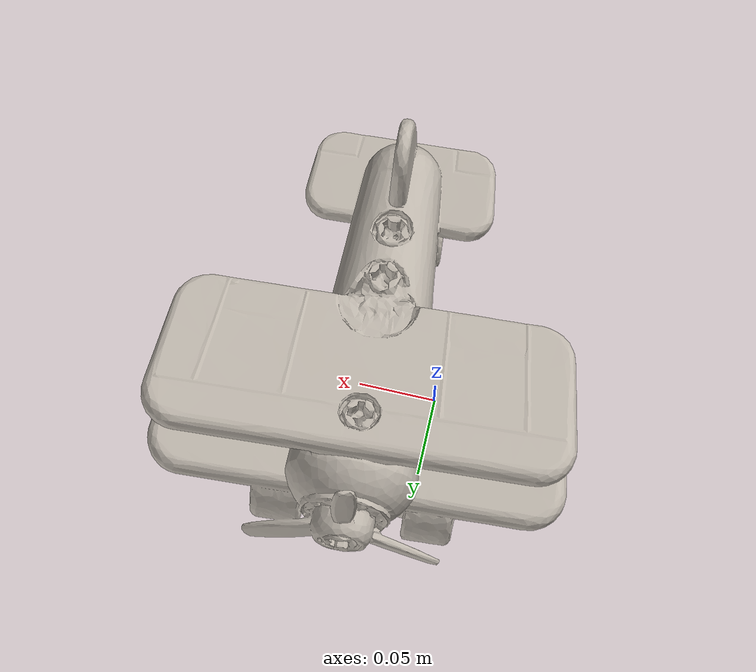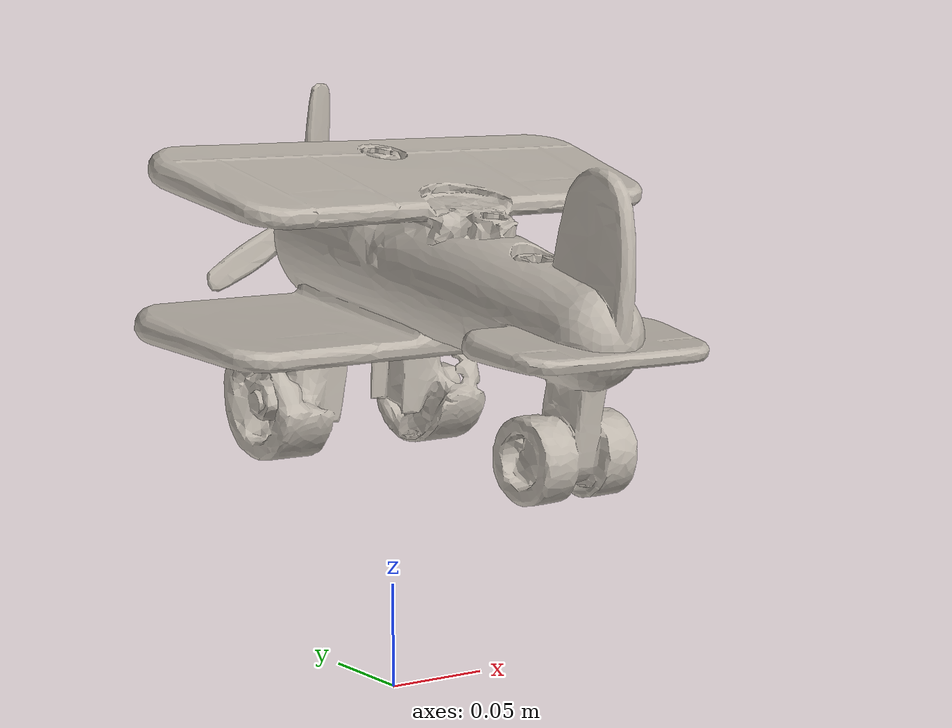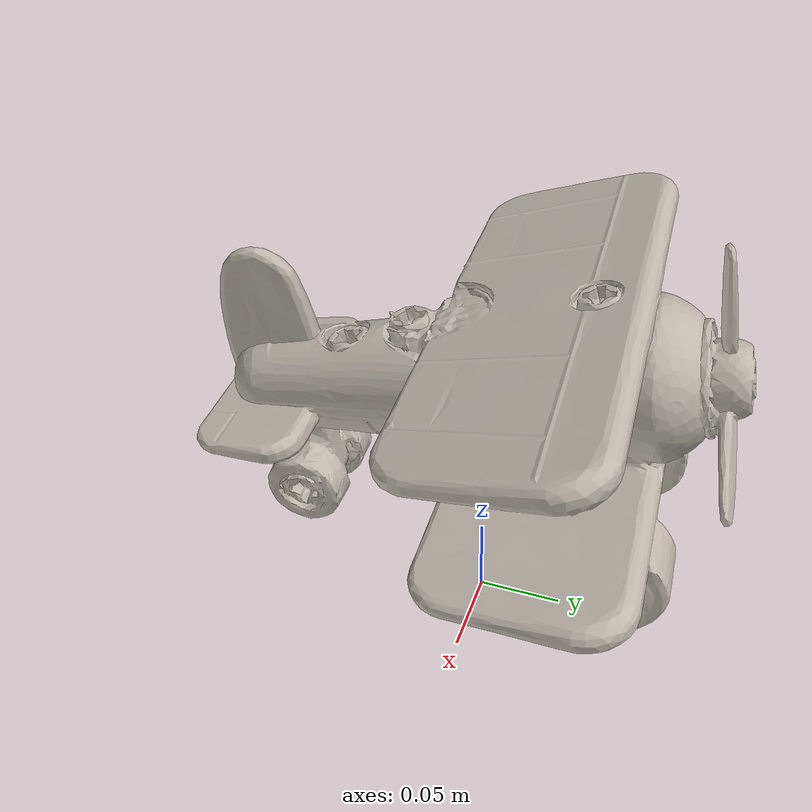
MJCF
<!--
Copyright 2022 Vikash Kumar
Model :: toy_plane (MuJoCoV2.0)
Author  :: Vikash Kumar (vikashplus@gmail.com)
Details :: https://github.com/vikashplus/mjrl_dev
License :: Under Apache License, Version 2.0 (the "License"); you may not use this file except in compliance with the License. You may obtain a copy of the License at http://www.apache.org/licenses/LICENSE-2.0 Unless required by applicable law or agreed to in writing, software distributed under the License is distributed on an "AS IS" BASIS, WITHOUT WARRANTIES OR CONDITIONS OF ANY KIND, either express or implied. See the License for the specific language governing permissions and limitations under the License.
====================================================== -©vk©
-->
<mujoco model="toy_plane">
    <!-- load texture and msh files -©vk©-->
    <asset>
        <texture name="textobj" type="2d" file="toy_plane.png"/>
        <mesh name="meshobj" file="toy_plane.msh"/>
        <material name="matobj" texture="textobj"/>
    </asset>

    <!-- Add files to the world -©vk©-->
    <worldbody>
        <light directional="true" diffuse=".4 .4 .4" specular="0.1 0.1 0.1" pos="0 0 5.0" dir="0 0 -1" castshadow="false"/>
        <light directional="true" diffuse=".6 .6 .6" specular="0.2 0.2 0.2" pos="0 0 4" dir="0 0 -1"/>

        <body pos="0.0 0.0 0.1">
            <geom type="mesh" mesh="meshobj" size=".1 .1" material="matobj" group="1" condim="1"/>
        </body>
    </worldbody>
</mujoco>
